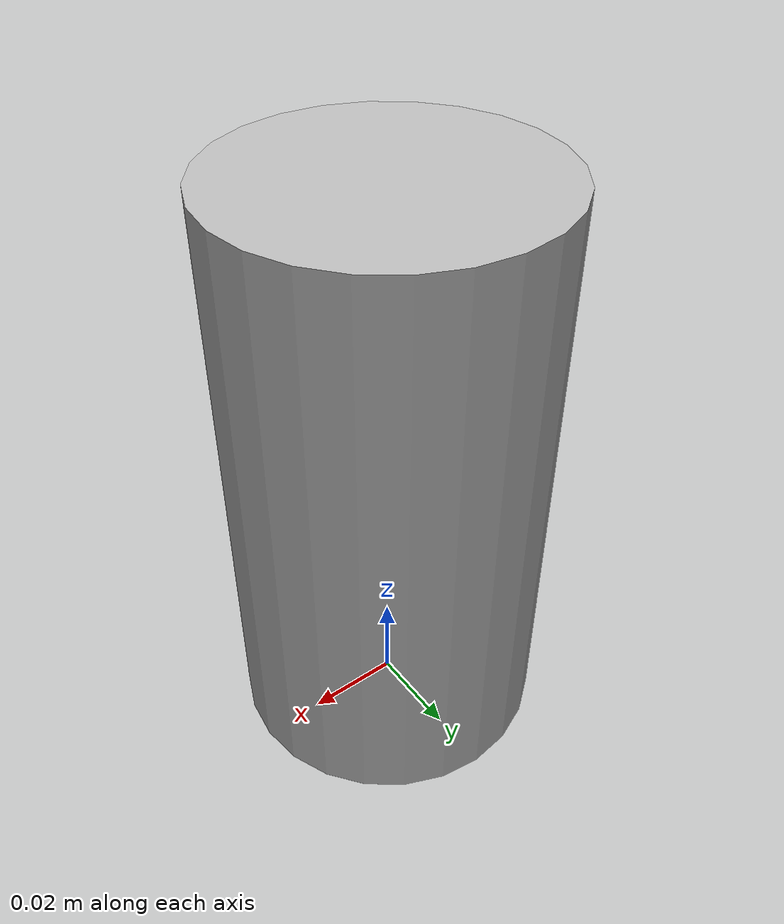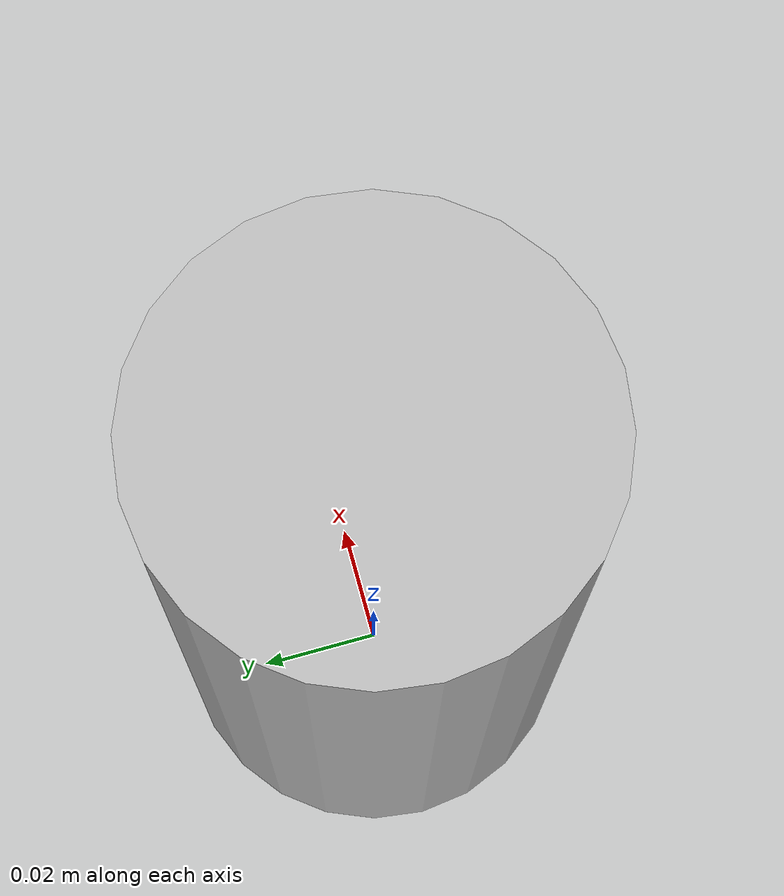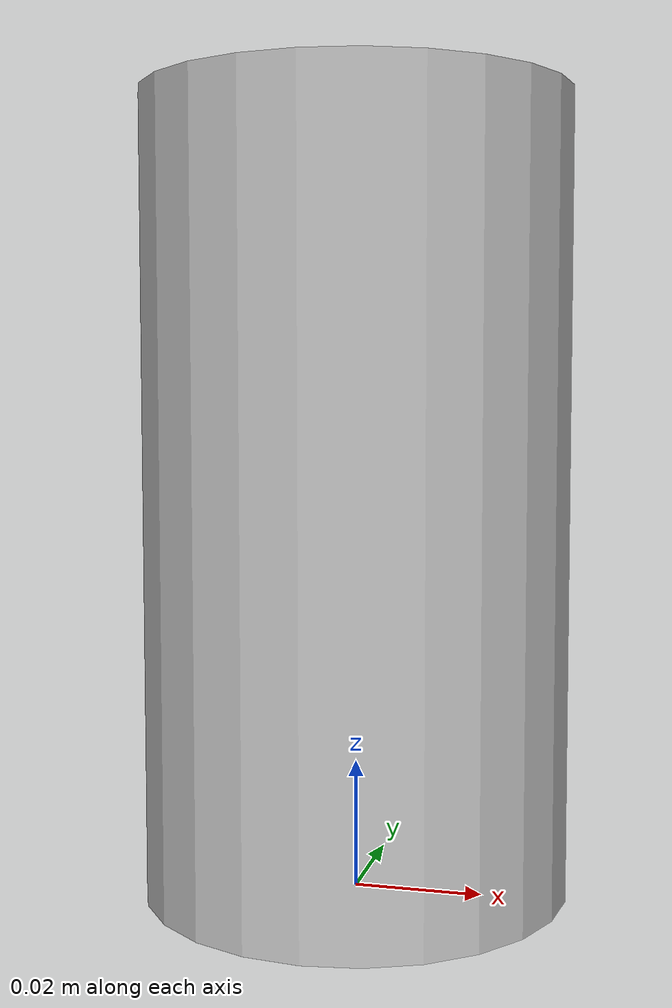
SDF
<?xml version="1.0" ?>
<sdf version="1.5">
  <model name="beer">
    <link name="link">
      <pose>0 0 0.0615 0 0 0</pose>

      <inertial>
        <mass>0.350</mass>
        <inertia>
          <ixx>0.000536</ixx> <ixy>0</ixy>
          <ixz>0</ixz>
          <iyy>0.000536</iyy>
          <iyz>0</iyz>
          <izz>0.000190</izz>
        </inertia>
      </inertial>

      <collision name="collision">
        <geometry>
          <cylinder>
            <radius>0.033</radius>
            <length>0.123</length>
          </cylinder>
        </geometry>
        <surface>
          <friction>
            <ode>
              <mu>100.0</mu>    <mu2>100.0</mu2>  <fdir1>0 0 0</fdir1>
              <slip1>0.0</slip1> <slip2>0.0</slip2>
            </ode>
          </friction>
          <contact>
            <ode>
              <kp>1000000.0</kp> <kd>1.0</kd>       <min_depth>0.001</min_depth>
              <max_vel>0.1</max_vel>
            </ode>
          </contact>
        </surface>
      </collision>

      <visual name="visual">
        <geometry>
          <cylinder>
            <radius>0.033</radius>
            <length>0.123</length>
          </cylinder>
        </geometry>
        <material>
          <script>
            <uri>model://beer/materials/scripts</uri>
            <uri>model://beer/materials/textures</uri>
            <name>Beer/Diffuse</name>
          </script>
        </material>
      </visual>

    </link>
  </model>
</sdf>
